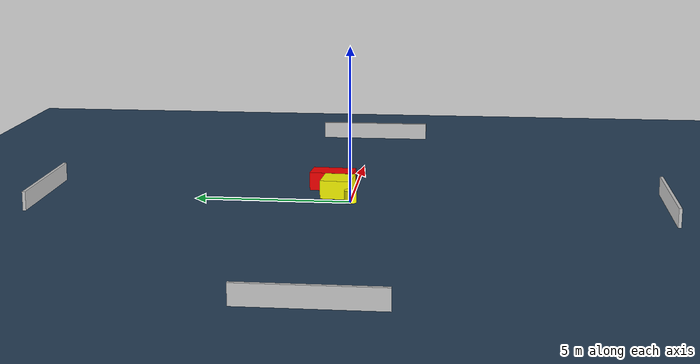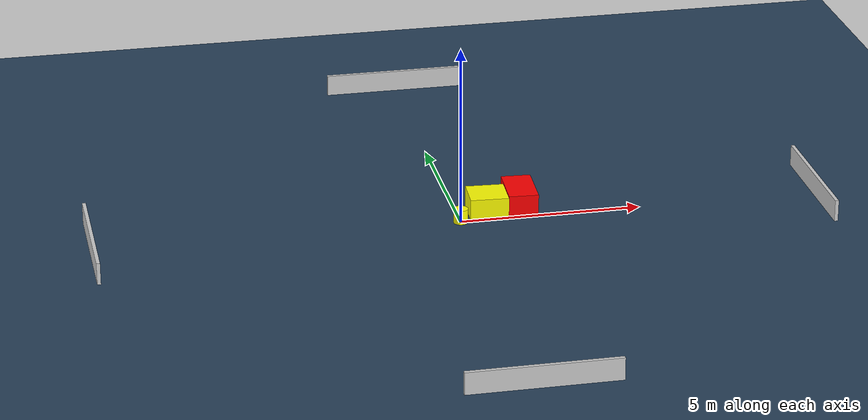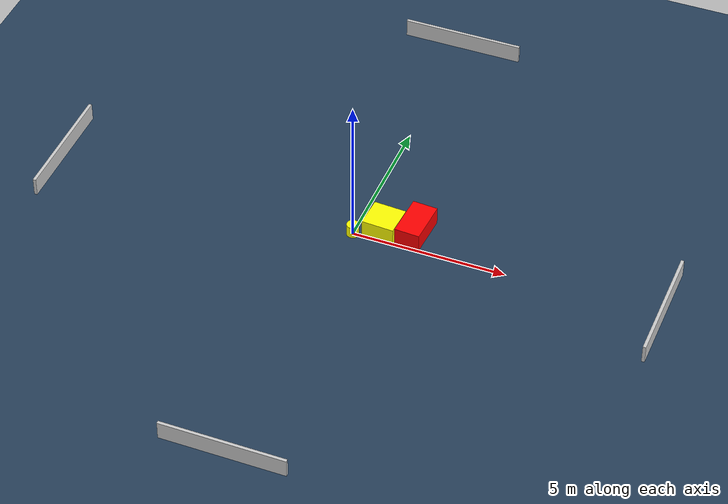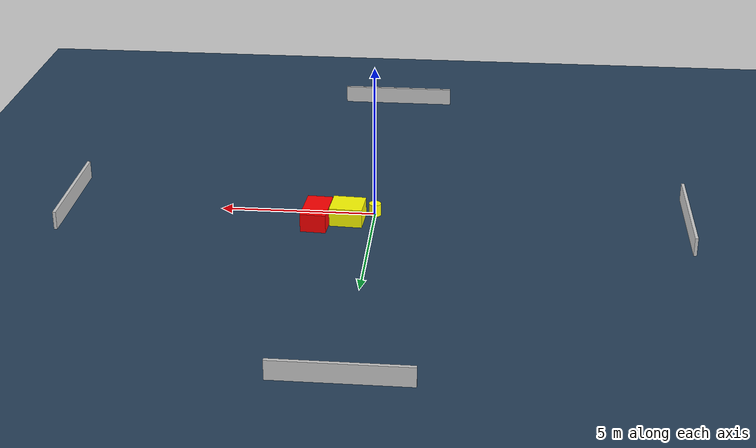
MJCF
<?xml version="1.0" ?>
<mujoco model="generated_environment">
  <option timestep="0.01" integrator="RK4" cone="elliptic"/>
  <default>
    <geom density="1"/>
  </default>
  <asset>
    <texture builtin="gradient" height="3072" name="skybox" rgb1="0.3 0.5 0.7" rgb2="0 0 0" type="skybox" width="512"/>
    <texture builtin="checker" height="300" name="groundplane" rgb1="0.2 0.3 0.4" rgb2="0.1 0.2 0.3" type="2d" width="300"/>
    <material name="groundplane" reflectance="0.2" texrepeat="5 5" texture="groundplane"/>
  </asset>
  <worldbody>
    <light dir="0 0 -1" directional="true" pos="0 0 1.5"/>
    <geom condim="3" friction="0.5 0.005 0.001" material="groundplane" name="floor" pos="0 0 0" size="0 0 0.05" type="plane"/>
    <body name="walls">
      <geom name="wall_1" condim="4" pos="-10.0 0.0 0.3" rgba="0.800000011920929 0.800000011920929 0.800000011920929 1.0" size="0.05 2.0 0.3" type="box"/>
      <geom name="wall_2" condim="4" pos="10.0 0.0 0.3" rgba="0.800000011920929 0.800000011920929 0.800000011920929 1.0" size="0.05 2.0 0.3" type="box"/>
      <geom name="wall_3" condim="4" pos="0.0 -10.0 0.3" rgba="0.800000011920929 0.800000011920929 0.800000011920929 1.0" size="2.0 0.05 0.3" type="box"/>
      <geom name="wall_4" condim="4" pos="0.0 10.0 0.3" rgba="0.800000011920929 0.800000011920929 0.800000011920929 1.0" size="2.0 0.05 0.3" type="box"/>
    </body>
    <body name="robot">
      <joint name="joint_x" type="slide" pos="0 0 0" axis="1 0 0"/>
      <joint name="joint_y" type="slide" pos="0 0 0" axis="0 1 0"/>
      <geom name="robot" type="cylinder" pos="0.0 0.0 0.2" size="0.2 0.2 0.0" mass="5.0" friction="1.0 0.005 0.0001" condim="4" rgba="1.0 1.0 0.0 1.0"/>
    </body>
    <body name="obstacle_1_movable">
      <geom name="obstacle_1_movable" condim="4" pos="0.8357514091429081 0.49035737430914345 0.3" euler="0 0 356.849214233035" friction="0.0 0.005 0.001" rgba="1.0 1.0 0.0 1.0" size="0.5269859673132012 0.4989348173703226 0.3" type="box" mass="0.1"/>
      <joint type="free"/>
    </body>
    <body name="obstacle_2_static">
      <geom name="obstacle_2_static" condim="4" pos="1.8052608969731891 0.7541212458097333 0.3" euler="0 0 356.7409294958118" friction="0.0 0.005 0.001" rgba="1.0 0.0 0.0 1.0" size="0.40900193432804294 0.7126350465141342 0.3" type="box"/>
    </body>
  </worldbody>
  <actuator>
    <motor name="actuator_x" joint="joint_x" gear="1" ctrlrange="-1 1"/>
    <motor name="actuator_y" joint="joint_y" gear="1" ctrlrange="-1 1"/>
  </actuator>
</mujoco>
